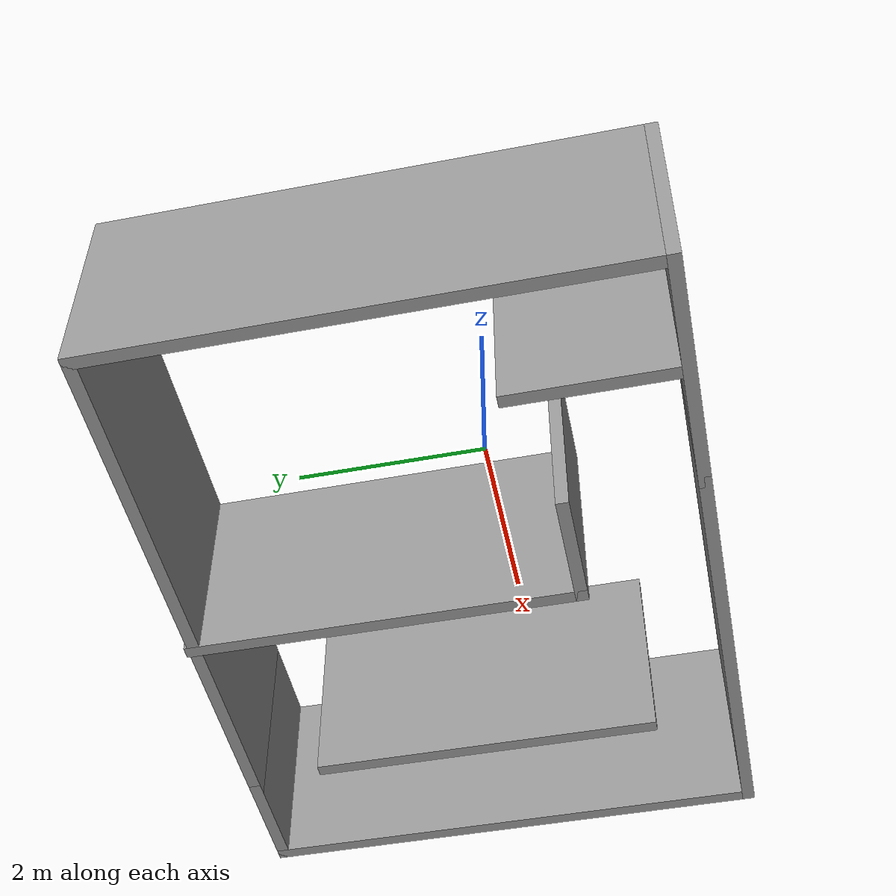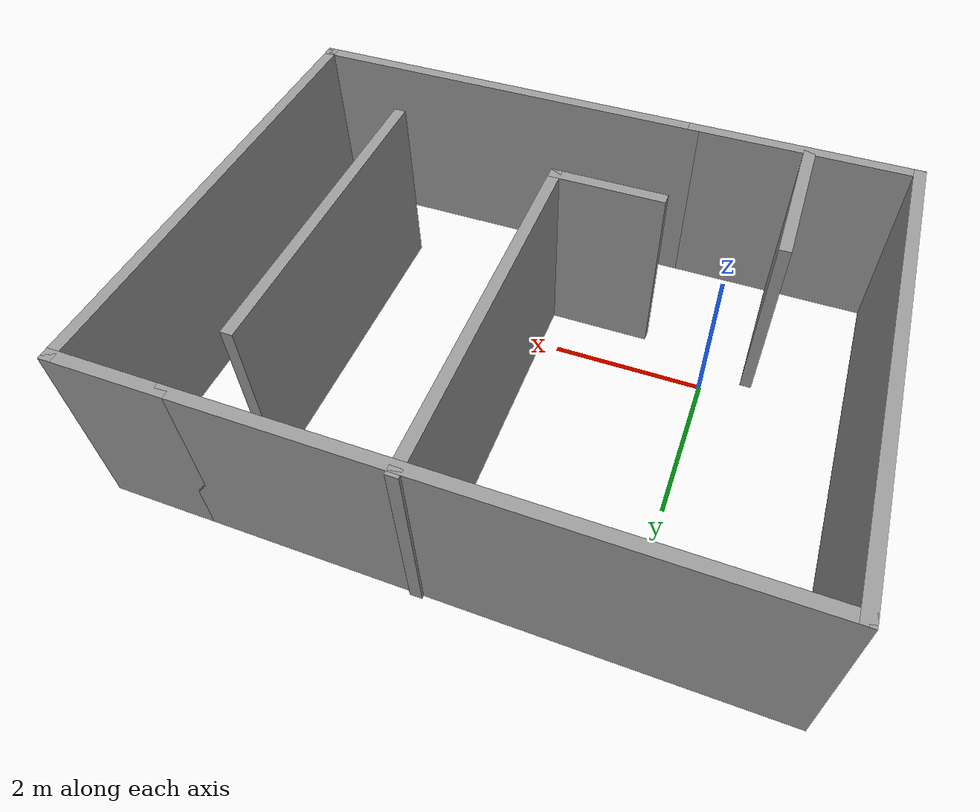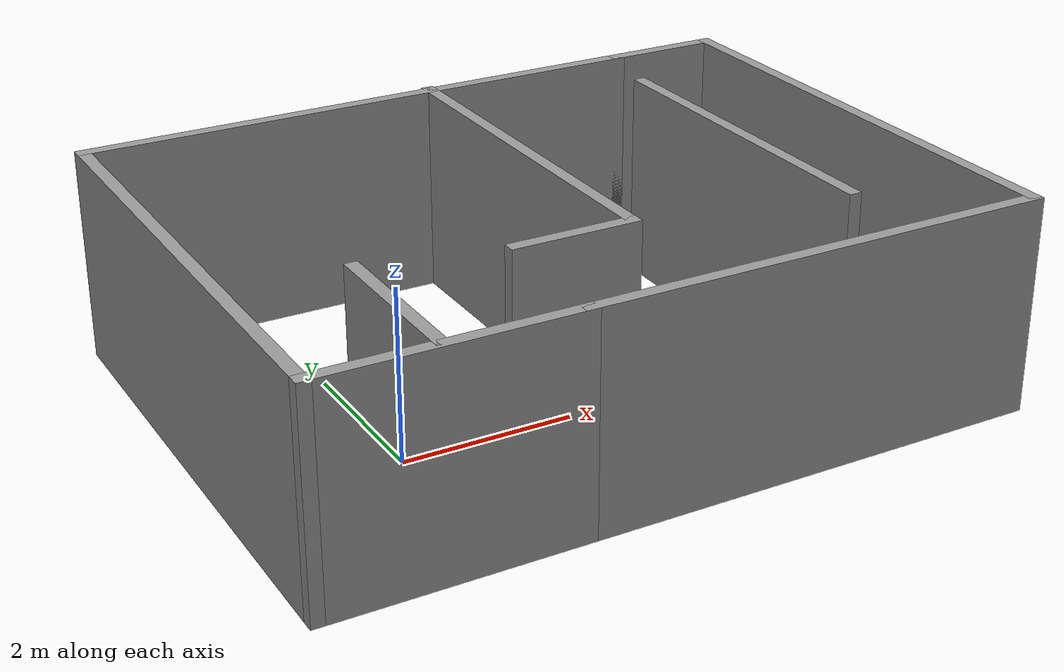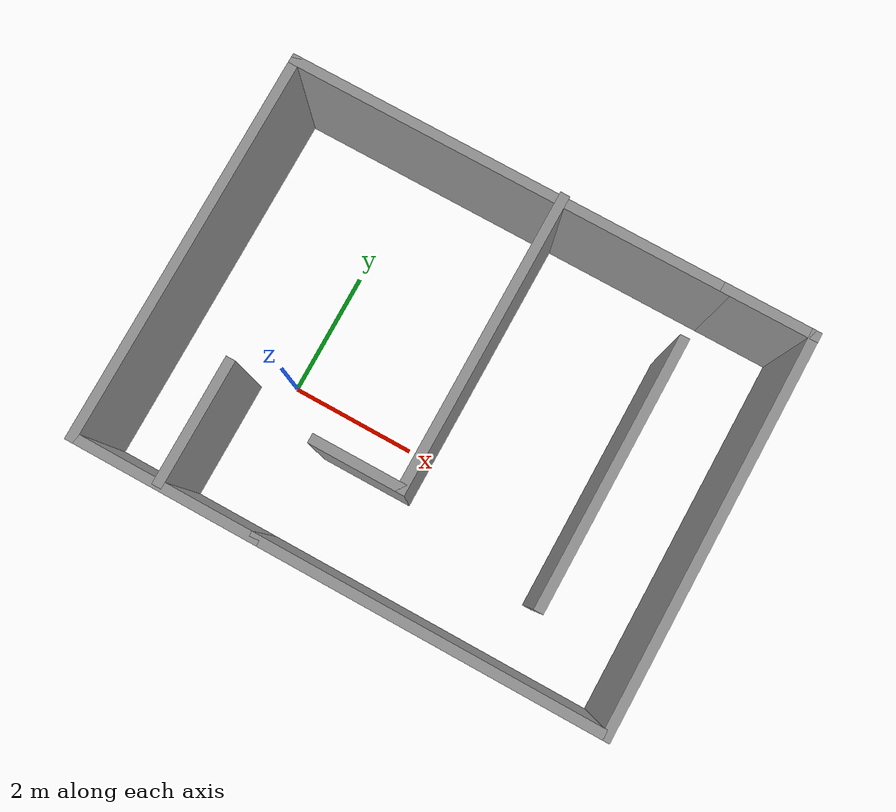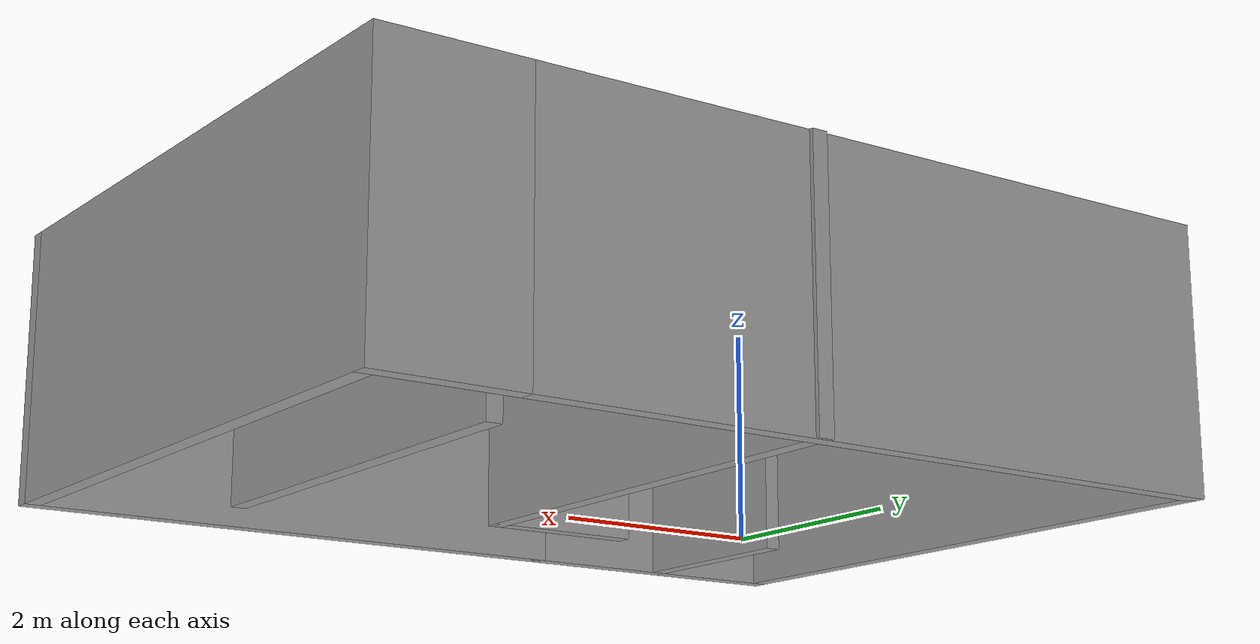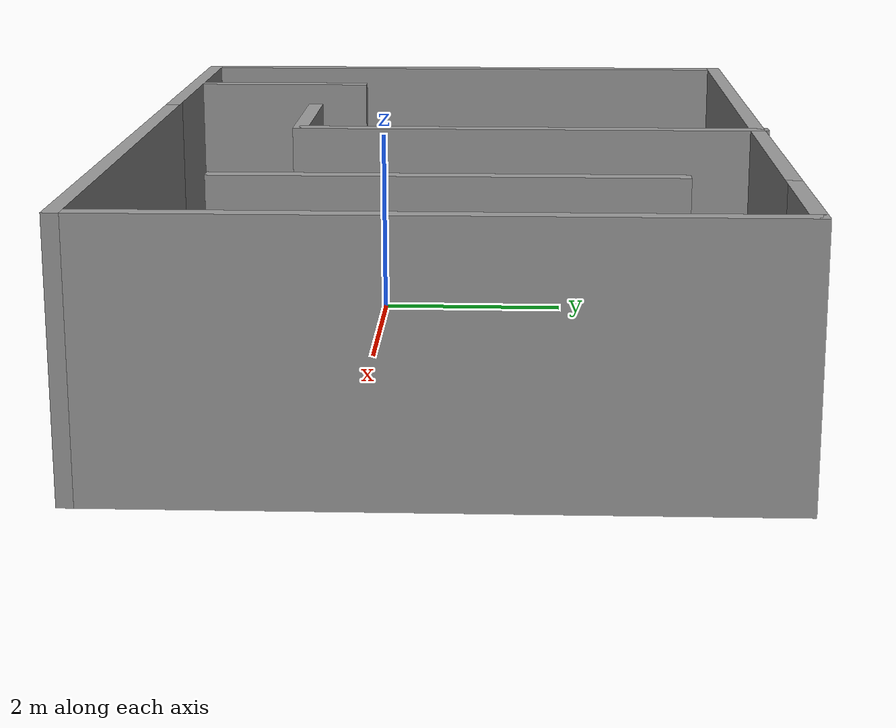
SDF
<?xml version='1.0'?>
<sdf version='1.7'>
  <model name='NMaze-1'>
    <pose>2.17 0.859891 0 0 -0 0</pose>
    <link name='Wall_0'>
      <collision name='Wall_0_Collision'>
        <geometry>
          <box>
            <size>3 0.15 2.5</size>
          </box>
        </geometry>
        <pose>0 0 1.25 0 -0 0</pose>
      </collision>
      <visual name='Wall_0_Visual'>
        <pose>0 0 1.25 0 -0 0</pose>
        <geometry>
          <box>
            <size>3 0.15 2.5</size>
          </box>
        </geometry>
        <material>
          <script>
            <uri>file://media/materials/scripts/gazebo.material</uri>
            <name>Gazebo/Grey</name>
          </script>
          <ambient>1 1 1 1</ambient>
        </material>
        <meta>
          <layer>0</layer>
        </meta>
      </visual>
      <pose>-2.675 -3.06989 0 0 -0 3.14159</pose>
    </link>
    <link name='Wall_1'>
      <collision name='Wall_1_Collision'>
        <geometry>
          <box>
            <size>6.25 0.15 2.5</size>
          </box>
        </geometry>
        <pose>0 0 1.25 0 -0 0</pose>
      </collision>
      <visual name='Wall_1_Visual'>
        <pose>0 0 1.25 0 -0 0</pose>
        <geometry>
          <box>
            <size>6.25 0.15 2.5</size>
          </box>
        </geometry>
        <material>
          <script>
            <uri>file://media/materials/scripts/gazebo.material</uri>
            <name>Gazebo/Grey</name>
          </script>
          <ambient>1 1 1 1</ambient>
        </material>
        <meta>
          <layer>0</layer>
        </meta>
      </visual>
      <pose>-4.1 -0.019891 0 0 -0 1.5708</pose>
    </link>
    <link name='Wall_12'>
      <collision name='Wall_12_Collision'>
        <geometry>
          <box>
            <size>4.75 0.15 2.5</size>
          </box>
        </geometry>
        <pose>0 0 1.25 0 -0 0</pose>
      </collision>
      <visual name='Wall_12_Visual'>
        <pose>0 0 1.25 0 -0 0</pose>
        <geometry>
          <box>
            <size>4.75 0.15 2.5</size>
          </box>
        </geometry>
        <material>
          <script>
            <uri>file://media/materials/scripts/gazebo.material</uri>
            <name>Gazebo/Grey</name>
          </script>
          <ambient>1 1 1 1</ambient>
        </material>
        <meta>
          <layer>0</layer>
        </meta>
      </visual>
      <pose>0.160226 0.769891 0 0 -0 1.5708</pose>
    </link>
    <link name='Wall_14'>
      <collision name='Wall_14_Collision'>
        <geometry>
          <box>
            <size>2 0.15 2.5</size>
          </box>
        </geometry>
        <pose>0 0 1.25 0 -0 0</pose>
      </collision>
      <visual name='Wall_14_Visual'>
        <pose>0 0 1.25 0 -0 0</pose>
        <geometry>
          <box>
            <size>2 0.15 2.5</size>
          </box>
        </geometry>
        <material>
          <script>
            <uri>file://media/materials/scripts/gazebo.material</uri>
            <name>Gazebo/Grey</name>
          </script>
          <ambient>1 1 1 1</ambient>
        </material>
        <meta>
          <layer>0</layer>
        </meta>
      </visual>
      <pose>-2.75258 -2.10196 0 0 -0 1.5708</pose>
    </link>
    <link name='Wall_16'>
      <collision name='Wall_16_Collision'>
        <geometry>
          <box>
            <size>1.5 0.15 2.5</size>
          </box>
        </geometry>
        <pose>0 0 1.25 0 -0 0</pose>
      </collision>
      <visual name='Wall_16_Visual'>
        <pose>0 0 1.25 0 -0 0</pose>
        <geometry>
          <box>
            <size>1.5 0.15 2.5</size>
          </box>
        </geometry>
        <material>
          <script>
            <uri>file://media/materials/scripts/gazebo.material</uri>
            <name>Gazebo/Grey</name>
          </script>
          <ambient>1 1 1 1</ambient>
        </material>
        <meta>
          <layer>0</layer>
        </meta>
      </visual>
      <pose>-0.514774 -1.53011 0 0 -0 3.14159</pose>
    </link>
    <link name='Wall_2'>
      <collision name='Wall_2_Collision'>
        <geometry>
          <box>
            <size>7 0.15 2.5</size>
          </box>
        </geometry>
        <pose>0 0 1.25 0 -0 0</pose>
      </collision>
      <visual name='Wall_2_Visual'>
        <pose>0 0 1.25 0 -0 0</pose>
        <geometry>
          <box>
            <size>7 0.15 2.5</size>
          </box>
        </geometry>
        <material>
          <script>
            <uri>file://media/materials/scripts/gazebo.material</uri>
            <name>Gazebo/Grey</name>
          </script>
          <ambient>1 1 1 1</ambient>
        </material>
        <meta>
          <layer>0</layer>
        </meta>
      </visual>
      <pose>-0.675 3.03011 0 0 -0 0</pose>
    </link>
    <link name='Wall_3'>
      <collision name='Wall_3_Collision'>
        <geometry>
          <box>
            <size>1.5 0.15 2.5</size>
          </box>
        </geometry>
        <pose>0 0 1.25 0 -0 0</pose>
      </collision>
      <visual name='Wall_3_Visual'>
        <pose>0 0 1.25 0 -0 0</pose>
        <geometry>
          <box>
            <size>1.5 0.15 2.5</size>
          </box>
        </geometry>
        <material>
          <script>
            <uri>file://media/materials/scripts/gazebo.material</uri>
            <name>Gazebo/Grey</name>
          </script>
          <ambient>1 1 1 1</ambient>
        </material>
        <meta>
          <layer>0</layer>
        </meta>
      </visual>
      <pose>3.425 3.03011 0 0 -0 0</pose>
    </link>
    <link name='Wall_4'>
      <collision name='Wall_4_Collision'>
        <geometry>
          <box>
            <size>6.25 0.15 2.5</size>
          </box>
        </geometry>
        <pose>0 0 1.25 0 -0 0</pose>
      </collision>
      <visual name='Wall_4_Visual'>
        <pose>0 0 1.25 0 -0 0</pose>
        <geometry>
          <box>
            <size>6.25 0.15 2.5</size>
          </box>
        </geometry>
        <material>
          <script>
            <uri>file://media/materials/scripts/gazebo.material</uri>
            <name>Gazebo/Grey</name>
          </script>
          <ambient>1 1 1 1</ambient>
        </material>
        <meta>
          <layer>0</layer>
        </meta>
      </visual>
      <pose>4.1 -0.019891 0 0 -0 -1.5708</pose>
    </link>
    <link name='Wall_5'>
      <collision name='Wall_5_Collision'>
        <geometry>
          <box>
            <size>5.5 0.15 2.5</size>
          </box>
        </geometry>
        <pose>0 0 1.25 0 -0 0</pose>
      </collision>
      <visual name='Wall_5_Visual'>
        <pose>0 0 1.25 0 -0 0</pose>
        <geometry>
          <box>
            <size>5.5 0.15 2.5</size>
          </box>
        </geometry>
        <material>
          <script>
            <uri>file://media/materials/scripts/gazebo.material</uri>
            <name>Gazebo/Grey</name>
          </script>
          <ambient>1 1 1 1</ambient>
        </material>
        <meta>
          <layer>0</layer>
        </meta>
      </visual>
      <pose>1.425 -3.06989 0 0 -0 3.14159</pose>
    </link>
    <link name='Wall_8'>
      <collision name='Wall_8_Collision'>
        <geometry>
          <box>
            <size>4.25 0.15 2.5</size>
          </box>
        </geometry>
        <pose>0 0 1.25 0 -0 0</pose>
      </collision>
      <visual name='Wall_8_Visual'>
        <pose>0 0 1.25 0 -0 0</pose>
        <geometry>
          <box>
            <size>4.25 0.15 2.5</size>
          </box>
        </geometry>
        <material>
          <script>
            <uri>file://media/materials/scripts/gazebo.material</uri>
            <name>Gazebo/Grey</name>
          </script>
          <ambient>1 1 1 1</ambient>
        </material>
        <meta>
          <layer>0</layer>
        </meta>
      </visual>
      <pose>2.54711 0.034424 0 0 -0 1.5708</pose>
    </link>
    <static>1</static>
  </model>
</sdf>
